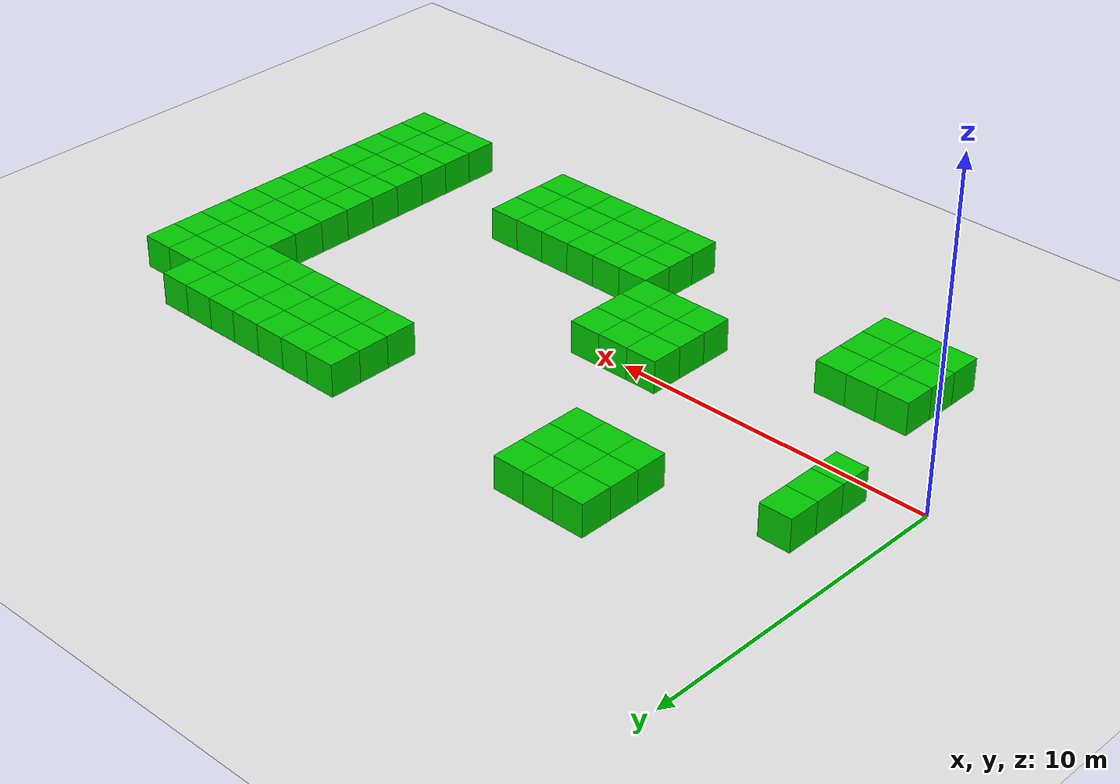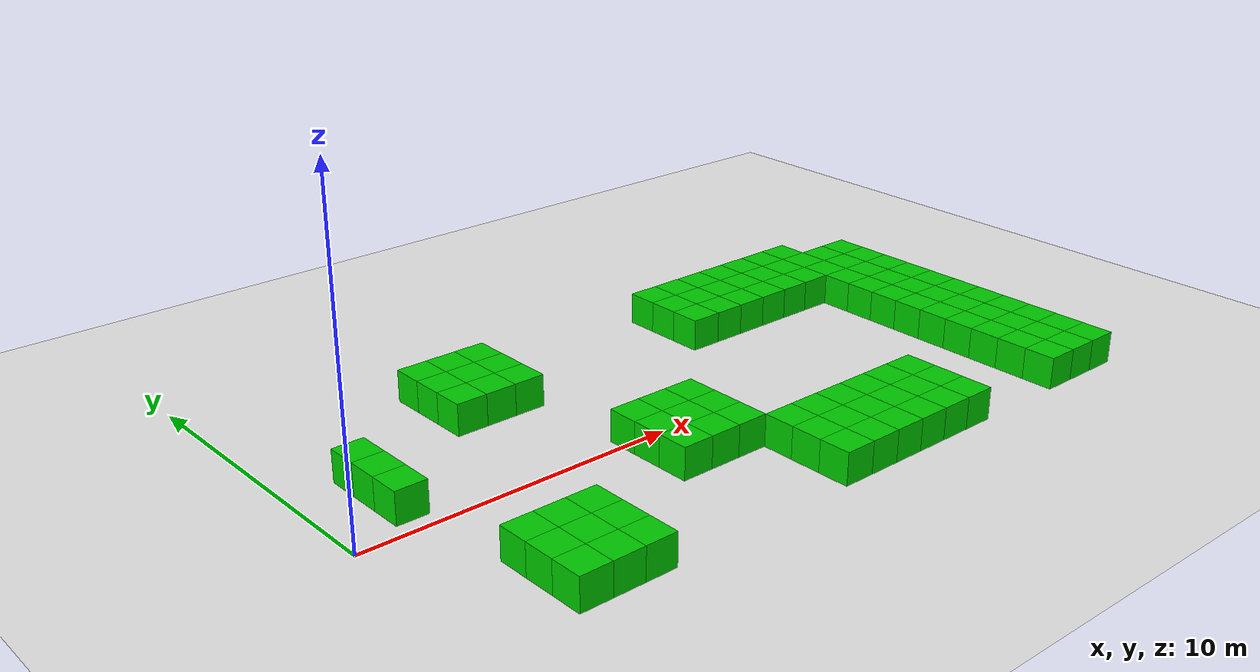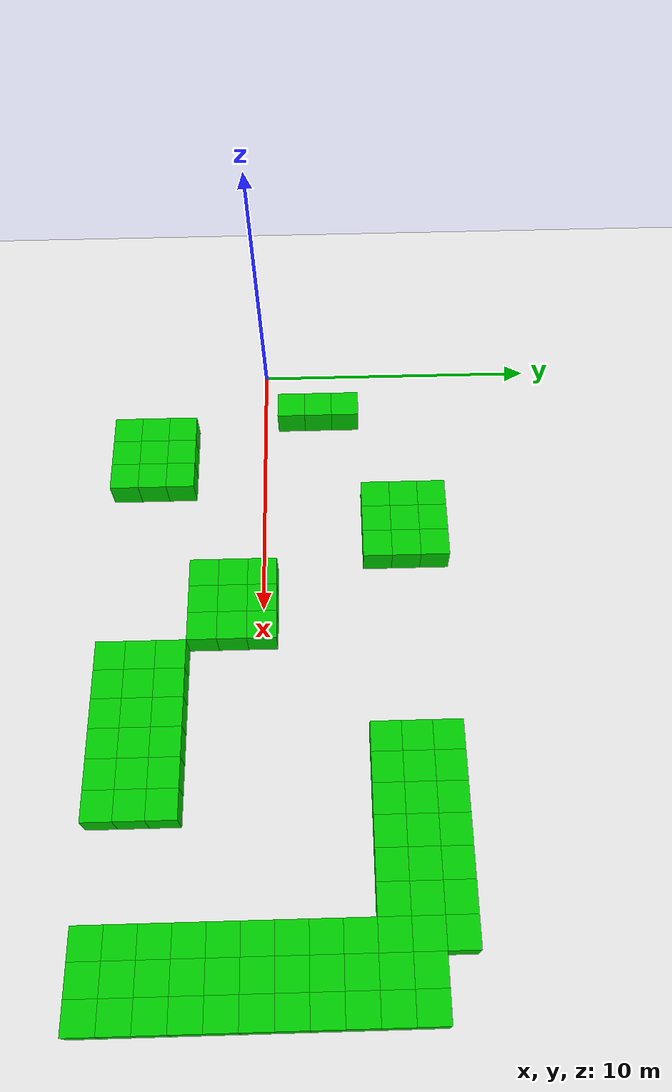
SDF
<sdf version="1.6">
 <world name="generated_maze">
  <model name="ground_plane">
   <static>true</static>
   <link name="link">
    <collision name="collision">
     <geometry><plane><normal>0 0 1</normal><size>100 100</size></plane></geometry>
    </collision>
    <visual name="visual">
     <geometry><plane><normal>0 0 1</normal><size>100 100</size></plane></geometry>
     <material>
      <ambient>0.9 0.9 0.9 1</ambient>
      <diffuse>0.9 0.9 0.9 1</diffuse>
      <specular>0.3 0.3 0.3 1</specular>
     </material>
    </visual>
   </link>
  </model>
  <model name="wall_18_30">
   <static>true</static>
   <pose>6 6 0.5 0 0 0</pose>
   <link name="link">
    <collision name="collision"><geometry><box><size>1 1 1</size></box></geometry></collision>
    <visual name="visual">
     <geometry><box><size>1 1 1</size></box></geometry>
     <material>
      <ambient>0.0 0.8 0.0 1</ambient>
      <diffuse>0.0 0.8 0.0 1</diffuse>
      <specular>0.1 0.1 0.1 1</specular>
     </material>
    </visual>
   </link>
  </model>
  <model name="wall_18_31">
   <static>true</static>
   <pose>7 6 0.5 0 0 0</pose>
   <link name="link">
    <collision name="collision"><geometry><box><size>1 1 1</size></box></geometry></collision>
    <visual name="visual">
     <geometry><box><size>1 1 1</size></box></geometry>
     <material>
      <ambient>0.0 0.8 0.0 1</ambient>
      <diffuse>0.0 0.8 0.0 1</diffuse>
      <specular>0.1 0.1 0.1 1</specular>
     </material>
    </visual>
   </link>
  </model>
  <model name="wall_18_32">
   <static>true</static>
   <pose>8 6 0.5 0 0 0</pose>
   <link name="link">
    <collision name="collision"><geometry><box><size>1 1 1</size></box></geometry></collision>
    <visual name="visual">
     <geometry><box><size>1 1 1</size></box></geometry>
     <material>
      <ambient>0.0 0.8 0.0 1</ambient>
      <diffuse>0.0 0.8 0.0 1</diffuse>
      <specular>0.1 0.1 0.1 1</specular>
     </material>
    </visual>
   </link>
  </model>
  <model name="wall_18_39">
   <static>true</static>
   <pose>15 6 0.5 0 0 0</pose>
   <link name="link">
    <collision name="collision"><geometry><box><size>1 1 1</size></box></geometry></collision>
    <visual name="visual">
     <geometry><box><size>1 1 1</size></box></geometry>
     <material>
      <ambient>0.0 0.8 0.0 1</ambient>
      <diffuse>0.0 0.8 0.0 1</diffuse>
      <specular>0.1 0.1 0.1 1</specular>
     </material>
    </visual>
   </link>
  </model>
  <model name="wall_18_40">
   <static>true</static>
   <pose>16 6 0.5 0 0 0</pose>
   <link name="link">
    <collision name="collision"><geometry><box><size>1 1 1</size></box></geometry></collision>
    <visual name="visual">
     <geometry><box><size>1 1 1</size></box></geometry>
     <material>
      <ambient>0.0 0.8 0.0 1</ambient>
      <diffuse>0.0 0.8 0.0 1</diffuse>
      <specular>0.1 0.1 0.1 1</specular>
     </material>
    </visual>
   </link>
  </model>
  <model name="wall_18_41">
   <static>true</static>
   <pose>17 6 0.5 0 0 0</pose>
   <link name="link">
    <collision name="collision"><geometry><box><size>1 1 1</size></box></geometry></collision>
    <visual name="visual">
     <geometry><box><size>1 1 1</size></box></geometry>
     <material>
      <ambient>0.0 0.8 0.0 1</ambient>
      <diffuse>0.0 0.8 0.0 1</diffuse>
      <specular>0.1 0.1 0.1 1</specular>
     </material>
    </visual>
   </link>
  </model>
  <model name="wall_18_42">
   <static>true</static>
   <pose>18 6 0.5 0 0 0</pose>
   <link name="link">
    <collision name="collision"><geometry><box><size>1 1 1</size></box></geometry></collision>
    <visual name="visual">
     <geometry><box><size>1 1 1</size></box></geometry>
     <material>
      <ambient>0.0 0.8 0.0 1</ambient>
      <diffuse>0.0 0.8 0.0 1</diffuse>
      <specular>0.1 0.1 0.1 1</specular>
     </material>
    </visual>
   </link>
  </model>
  <model name="wall_18_43">
   <static>true</static>
   <pose>19 6 0.5 0 0 0</pose>
   <link name="link">
    <collision name="collision"><geometry><box><size>1 1 1</size></box></geometry></collision>
    <visual name="visual">
     <geometry><box><size>1 1 1</size></box></geometry>
     <material>
      <ambient>0.0 0.8 0.0 1</ambient>
      <diffuse>0.0 0.8 0.0 1</diffuse>
      <specular>0.1 0.1 0.1 1</specular>
     </material>
    </visual>
   </link>
  </model>
  <model name="wall_18_44">
   <static>true</static>
   <pose>20 6 0.5 0 0 0</pose>
   <link name="link">
    <collision name="collision"><geometry><box><size>1 1 1</size></box></geometry></collision>
    <visual name="visual">
     <geometry><box><size>1 1 1</size></box></geometry>
     <material>
      <ambient>0.0 0.8 0.0 1</ambient>
      <diffuse>0.0 0.8 0.0 1</diffuse>
      <specular>0.1 0.1 0.1 1</specular>
     </material>
    </visual>
   </link>
  </model>
  <model name="wall_18_45">
   <static>true</static>
   <pose>21 6 0.5 0 0 0</pose>
   <link name="link">
    <collision name="collision"><geometry><box><size>1 1 1</size></box></geometry></collision>
    <visual name="visual">
     <geometry><box><size>1 1 1</size></box></geometry>
     <material>
      <ambient>0.0 0.8 0.0 1</ambient>
      <diffuse>0.0 0.8 0.0 1</diffuse>
      <specular>0.1 0.1 0.1 1</specular>
     </material>
    </visual>
   </link>
  </model>
  <model name="wall_19_30">
   <static>true</static>
   <pose>6 5 0.5 0 0 0</pose>
   <link name="link">
    <collision name="collision"><geometry><box><size>1 1 1</size></box></geometry></collision>
    <visual name="visual">
     <geometry><box><size>1 1 1</size></box></geometry>
     <material>
      <ambient>0.0 0.8 0.0 1</ambient>
      <diffuse>0.0 0.8 0.0 1</diffuse>
      <specular>0.1 0.1 0.1 1</specular>
     </material>
    </visual>
   </link>
  </model>
  <model name="wall_19_31">
   <static>true</static>
   <pose>7 5 0.5 0 0 0</pose>
   <link name="link">
    <collision name="collision"><geometry><box><size>1 1 1</size></box></geometry></collision>
    <visual name="visual">
     <geometry><box><size>1 1 1</size></box></geometry>
     <material>
      <ambient>0.0 0.8 0.0 1</ambient>
      <diffuse>0.0 0.8 0.0 1</diffuse>
      <specular>0.1 0.1 0.1 1</specular>
     </material>
    </visual>
   </link>
  </model>
  <model name="wall_19_32">
   <static>true</static>
   <pose>8 5 0.5 0 0 0</pose>
   <link name="link">
    <collision name="collision"><geometry><box><size>1 1 1</size></box></geometry></collision>
    <visual name="visual">
     <geometry><box><size>1 1 1</size></box></geometry>
     <material>
      <ambient>0.0 0.8 0.0 1</ambient>
      <diffuse>0.0 0.8 0.0 1</diffuse>
      <specular>0.1 0.1 0.1 1</specular>
     </material>
    </visual>
   </link>
  </model>
  <model name="wall_19_39">
   <static>true</static>
   <pose>15 5 0.5 0 0 0</pose>
   <link name="link">
    <collision name="collision"><geometry><box><size>1 1 1</size></box></geometry></collision>
    <visual name="visual">
     <geometry><box><size>1 1 1</size></box></geometry>
     <material>
      <ambient>0.0 0.8 0.0 1</ambient>
      <diffuse>0.0 0.8 0.0 1</diffuse>
      <specular>0.1 0.1 0.1 1</specular>
     </material>
    </visual>
   </link>
  </model>
  <model name="wall_19_40">
   <static>true</static>
   <pose>16 5 0.5 0 0 0</pose>
   <link name="link">
    <collision name="collision"><geometry><box><size>1 1 1</size></box></geometry></collision>
    <visual name="visual">
     <geometry><box><size>1 1 1</size></box></geometry>
     <material>
      <ambient>0.0 0.8 0.0 1</ambient>
      <diffuse>0.0 0.8 0.0 1</diffuse>
      <specular>0.1 0.1 0.1 1</specular>
     </material>
    </visual>
   </link>
  </model>
  <model name="wall_19_41">
   <static>true</static>
   <pose>17 5 0.5 0 0 0</pose>
   <link name="link">
    <collision name="collision"><geometry><box><size>1 1 1</size></box></geometry></collision>
    <visual name="visual">
     <geometry><box><size>1 1 1</size></box></geometry>
     <material>
      <ambient>0.0 0.8 0.0 1</ambient>
      <diffuse>0.0 0.8 0.0 1</diffuse>
      <specular>0.1 0.1 0.1 1</specular>
     </material>
    </visual>
   </link>
  </model>
  <model name="wall_19_42">
   <static>true</static>
   <pose>18 5 0.5 0 0 0</pose>
   <link name="link">
    <collision name="collision"><geometry><box><size>1 1 1</size></box></geometry></collision>
    <visual name="visual">
     <geometry><box><size>1 1 1</size></box></geometry>
     <material>
      <ambient>0.0 0.8 0.0 1</ambient>
      <diffuse>0.0 0.8 0.0 1</diffuse>
      <specular>0.1 0.1 0.1 1</specular>
     </material>
    </visual>
   </link>
  </model>
  <model name="wall_19_43">
   <static>true</static>
   <pose>19 5 0.5 0 0 0</pose>
   <link name="link">
    <collision name="collision"><geometry><box><size>1 1 1</size></box></geometry></collision>
    <visual name="visual">
     <geometry><box><size>1 1 1</size></box></geometry>
     <material>
      <ambient>0.0 0.8 0.0 1</ambient>
      <diffuse>0.0 0.8 0.0 1</diffuse>
      <specular>0.1 0.1 0.1 1</specular>
     </material>
    </visual>
   </link>
  </model>
  <model name="wall_19_44">
   <static>true</static>
   <pose>20 5 0.5 0 0 0</pose>
   <link name="link">
    <collision name="collision"><geometry><box><size>1 1 1</size></box></geometry></collision>
    <visual name="visual">
     <geometry><box><size>1 1 1</size></box></geometry>
     <material>
      <ambient>0.0 0.8 0.0 1</ambient>
      <diffuse>0.0 0.8 0.0 1</diffuse>
      <specular>0.1 0.1 0.1 1</specular>
     </material>
    </visual>
   </link>
  </model>
  <model name="wall_19_45">
   <static>true</static>
   <pose>21 5 0.5 0 0 0</pose>
   <link name="link">
    <collision name="collision"><geometry><box><size>1 1 1</size></box></geometry></collision>
    <visual name="visual">
     <geometry><box><size>1 1 1</size></box></geometry>
     <material>
      <ambient>0.0 0.8 0.0 1</ambient>
      <diffuse>0.0 0.8 0.0 1</diffuse>
      <specular>0.1 0.1 0.1 1</specular>
     </material>
    </visual>
   </link>
  </model>
  <model name="wall_19_46">
   <static>true</static>
   <pose>22 5 0.5 0 0 0</pose>
   <link name="link">
    <collision name="collision"><geometry><box><size>1 1 1</size></box></geometry></collision>
    <visual name="visual">
     <geometry><box><size>1 1 1</size></box></geometry>
     <material>
      <ambient>0.0 0.8 0.0 1</ambient>
      <diffuse>0.0 0.8 0.0 1</diffuse>
      <specular>0.1 0.1 0.1 1</specular>
     </material>
    </visual>
   </link>
  </model>
  <model name="wall_19_47">
   <static>true</static>
   <pose>23 5 0.5 0 0 0</pose>
   <link name="link">
    <collision name="collision"><geometry><box><size>1 1 1</size></box></geometry></collision>
    <visual name="visual">
     <geometry><box><size>1 1 1</size></box></geometry>
     <material>
      <ambient>0.0 0.8 0.0 1</ambient>
      <diffuse>0.0 0.8 0.0 1</diffuse>
      <specular>0.1 0.1 0.1 1</specular>
     </material>
    </visual>
   </link>
  </model>
  <model name="wall_20_30">
   <static>true</static>
   <pose>6 4 0.5 0 0 0</pose>
   <link name="link">
    <collision name="collision"><geometry><box><size>1 1 1</size></box></geometry></collision>
    <visual name="visual">
     <geometry><box><size>1 1 1</size></box></geometry>
     <material>
      <ambient>0.0 0.8 0.0 1</ambient>
      <diffuse>0.0 0.8 0.0 1</diffuse>
      <specular>0.1 0.1 0.1 1</specular>
     </material>
    </visual>
   </link>
  </model>
  <model name="wall_20_31">
   <static>true</static>
   <pose>7 4 0.5 0 0 0</pose>
   <link name="link">
    <collision name="collision"><geometry><box><size>1 1 1</size></box></geometry></collision>
    <visual name="visual">
     <geometry><box><size>1 1 1</size></box></geometry>
     <material>
      <ambient>0.0 0.8 0.0 1</ambient>
      <diffuse>0.0 0.8 0.0 1</diffuse>
      <specular>0.1 0.1 0.1 1</specular>
     </material>
    </visual>
   </link>
  </model>
  <model name="wall_20_32">
   <static>true</static>
   <pose>8 4 0.5 0 0 0</pose>
   <link name="link">
    <collision name="collision"><geometry><box><size>1 1 1</size></box></geometry></collision>
    <visual name="visual">
     <geometry><box><size>1 1 1</size></box></geometry>
     <material>
      <ambient>0.0 0.8 0.0 1</ambient>
      <diffuse>0.0 0.8 0.0 1</diffuse>
      <specular>0.1 0.1 0.1 1</specular>
     </material>
    </visual>
   </link>
  </model>
  <model name="wall_20_39">
   <static>true</static>
   <pose>15 4 0.5 0 0 0</pose>
   <link name="link">
    <collision name="collision"><geometry><box><size>1 1 1</size></box></geometry></collision>
    <visual name="visual">
     <geometry><box><size>1 1 1</size></box></geometry>
     <material>
      <ambient>0.0 0.8 0.0 1</ambient>
      <diffuse>0.0 0.8 0.0 1</diffuse>
      <specular>0.1 0.1 0.1 1</specular>
     </material>
    </visual>
   </link>
  </model>
  <model name="wall_20_40">
   <static>true</static>
   <pose>16 4 0.5 0 0 0</pose>
   <link name="link">
    <collision name="collision"><geometry><box><size>1 1 1</size></box></geometry></collision>
    <visual name="visual">
     <geometry><box><size>1 1 1</size></box></geometry>
     <material>
      <ambient>0.0 0.8 0.0 1</ambient>
      <diffuse>0.0 0.8 0.0 1</diffuse>
      <specular>0.1 0.1 0.1 1</specular>
     </material>
    </visual>
   </link>
  </model>
  <model name="wall_20_41">
   <static>true</static>
   <pose>17 4 0.5 0 0 0</pose>
   <link name="link">
    <collision name="collision"><geometry><box><size>1 1 1</size></box></geometry></collision>
    <visual name="visual">
     <geometry><box><size>1 1 1</size></box></geometry>
     <material>
      <ambient>0.0 0.8 0.0 1</ambient>
      <diffuse>0.0 0.8 0.0 1</diffuse>
      <specular>0.1 0.1 0.1 1</specular>
     </material>
    </visual>
   </link>
  </model>
  <model name="wall_20_42">
   <static>true</static>
   <pose>18 4 0.5 0 0 0</pose>
   <link name="link">
    <collision name="collision"><geometry><box><size>1 1 1</size></box></geometry></collision>
    <visual name="visual">
     <geometry><box><size>1 1 1</size></box></geometry>
     <material>
      <ambient>0.0 0.8 0.0 1</ambient>
      <diffuse>0.0 0.8 0.0 1</diffuse>
      <specular>0.1 0.1 0.1 1</specular>
     </material>
    </visual>
   </link>
  </model>
  <model name="wall_20_43">
   <static>true</static>
   <pose>19 4 0.5 0 0 0</pose>
   <link name="link">
    <collision name="collision"><geometry><box><size>1 1 1</size></box></geometry></collision>
    <visual name="visual">
     <geometry><box><size>1 1 1</size></box></geometry>
     <material>
      <ambient>0.0 0.8 0.0 1</ambient>
      <diffuse>0.0 0.8 0.0 1</diffuse>
      <specular>0.1 0.1 0.1 1</specular>
     </material>
    </visual>
   </link>
  </model>
  <model name="wall_20_44">
   <static>true</static>
   <pose>20 4 0.5 0 0 0</pose>
   <link name="link">
    <collision name="collision"><geometry><box><size>1 1 1</size></box></geometry></collision>
    <visual name="visual">
     <geometry><box><size>1 1 1</size></box></geometry>
     <material>
      <ambient>0.0 0.8 0.0 1</ambient>
      <diffuse>0.0 0.8 0.0 1</diffuse>
      <specular>0.1 0.1 0.1 1</specular>
     </material>
    </visual>
   </link>
  </model>
  <model name="wall_20_45">
   <static>true</static>
   <pose>21 4 0.5 0 0 0</pose>
   <link name="link">
    <collision name="collision"><geometry><box><size>1 1 1</size></box></geometry></collision>
    <visual name="visual">
     <geometry><box><size>1 1 1</size></box></geometry>
     <material>
      <ambient>0.0 0.8 0.0 1</ambient>
      <diffuse>0.0 0.8 0.0 1</diffuse>
      <specular>0.1 0.1 0.1 1</specular>
     </material>
    </visual>
   </link>
  </model>
  <model name="wall_20_46">
   <static>true</static>
   <pose>22 4 0.5 0 0 0</pose>
   <link name="link">
    <collision name="collision"><geometry><box><size>1 1 1</size></box></geometry></collision>
    <visual name="visual">
     <geometry><box><size>1 1 1</size></box></geometry>
     <material>
      <ambient>0.0 0.8 0.0 1</ambient>
      <diffuse>0.0 0.8 0.0 1</diffuse>
      <specular>0.1 0.1 0.1 1</specular>
     </material>
    </visual>
   </link>
  </model>
  <model name="wall_20_47">
   <static>true</static>
   <pose>23 4 0.5 0 0 0</pose>
   <link name="link">
    <collision name="collision"><geometry><box><size>1 1 1</size></box></geometry></collision>
    <visual name="visual">
     <geometry><box><size>1 1 1</size></box></geometry>
     <material>
      <ambient>0.0 0.8 0.0 1</ambient>
      <diffuse>0.0 0.8 0.0 1</diffuse>
      <specular>0.1 0.1 0.1 1</specular>
     </material>
    </visual>
   </link>
  </model>
  <model name="wall_21_26">
   <static>true</static>
   <pose>2 3 0.5 0 0 0</pose>
   <link name="link">
    <collision name="collision"><geometry><box><size>1 1 1</size></box></geometry></collision>
    <visual name="visual">
     <geometry><box><size>1 1 1</size></box></geometry>
     <material>
      <ambient>0.0 0.8 0.0 1</ambient>
      <diffuse>0.0 0.8 0.0 1</diffuse>
      <specular>0.1 0.1 0.1 1</specular>
     </material>
    </visual>
   </link>
  </model>
  <model name="wall_21_45">
   <static>true</static>
   <pose>21 3 0.5 0 0 0</pose>
   <link name="link">
    <collision name="collision"><geometry><box><size>1 1 1</size></box></geometry></collision>
    <visual name="visual">
     <geometry><box><size>1 1 1</size></box></geometry>
     <material>
      <ambient>0.0 0.8 0.0 1</ambient>
      <diffuse>0.0 0.8 0.0 1</diffuse>
      <specular>0.1 0.1 0.1 1</specular>
     </material>
    </visual>
   </link>
  </model>
  <model name="wall_21_46">
   <static>true</static>
   <pose>22 3 0.5 0 0 0</pose>
   <link name="link">
    <collision name="collision"><geometry><box><size>1 1 1</size></box></geometry></collision>
    <visual name="visual">
     <geometry><box><size>1 1 1</size></box></geometry>
     <material>
      <ambient>0.0 0.8 0.0 1</ambient>
      <diffuse>0.0 0.8 0.0 1</diffuse>
      <specular>0.1 0.1 0.1 1</specular>
     </material>
    </visual>
   </link>
  </model>
  <model name="wall_21_47">
   <static>true</static>
   <pose>23 3 0.5 0 0 0</pose>
   <link name="link">
    <collision name="collision"><geometry><box><size>1 1 1</size></box></geometry></collision>
    <visual name="visual">
     <geometry><box><size>1 1 1</size></box></geometry>
     <material>
      <ambient>0.0 0.8 0.0 1</ambient>
      <diffuse>0.0 0.8 0.0 1</diffuse>
      <specular>0.1 0.1 0.1 1</specular>
     </material>
    </visual>
   </link>
  </model>
  <model name="wall_22_26">
   <static>true</static>
   <pose>2 2 0.5 0 0 0</pose>
   <link name="link">
    <collision name="collision"><geometry><box><size>1 1 1</size></box></geometry></collision>
    <visual name="visual">
     <geometry><box><size>1 1 1</size></box></geometry>
     <material>
      <ambient>0.0 0.8 0.0 1</ambient>
      <diffuse>0.0 0.8 0.0 1</diffuse>
      <specular>0.1 0.1 0.1 1</specular>
     </material>
    </visual>
   </link>
  </model>
  <model name="wall_22_45">
   <static>true</static>
   <pose>21 2 0.5 0 0 0</pose>
   <link name="link">
    <collision name="collision"><geometry><box><size>1 1 1</size></box></geometry></collision>
    <visual name="visual">
     <geometry><box><size>1 1 1</size></box></geometry>
     <material>
      <ambient>0.0 0.8 0.0 1</ambient>
      <diffuse>0.0 0.8 0.0 1</diffuse>
      <specular>0.1 0.1 0.1 1</specular>
     </material>
    </visual>
   </link>
  </model>
  <model name="wall_22_46">
   <static>true</static>
   <pose>22 2 0.5 0 0 0</pose>
   <link name="link">
    <collision name="collision"><geometry><box><size>1 1 1</size></box></geometry></collision>
    <visual name="visual">
     <geometry><box><size>1 1 1</size></box></geometry>
     <material>
      <ambient>0.0 0.8 0.0 1</ambient>
      <diffuse>0.0 0.8 0.0 1</diffuse>
      <specular>0.1 0.1 0.1 1</specular>
     </material>
    </visual>
   </link>
  </model>
  <model name="wall_22_47">
   <static>true</static>
   <pose>23 2 0.5 0 0 0</pose>
   <link name="link">
    <collision name="collision"><geometry><box><size>1 1 1</size></box></geometry></collision>
    <visual name="visual">
     <geometry><box><size>1 1 1</size></box></geometry>
     <material>
      <ambient>0.0 0.8 0.0 1</ambient>
      <diffuse>0.0 0.8 0.0 1</diffuse>
      <specular>0.1 0.1 0.1 1</specular>
     </material>
    </visual>
   </link>
  </model>
  <model name="wall_23_26">
   <static>true</static>
   <pose>2 1 0.5 0 0 0</pose>
   <link name="link">
    <collision name="collision"><geometry><box><size>1 1 1</size></box></geometry></collision>
    <visual name="visual">
     <geometry><box><size>1 1 1</size></box></geometry>
     <material>
      <ambient>0.0 0.8 0.0 1</ambient>
      <diffuse>0.0 0.8 0.0 1</diffuse>
      <specular>0.1 0.1 0.1 1</specular>
     </material>
    </visual>
   </link>
  </model>
  <model name="wall_23_45">
   <static>true</static>
   <pose>21 1 0.5 0 0 0</pose>
   <link name="link">
    <collision name="collision"><geometry><box><size>1 1 1</size></box></geometry></collision>
    <visual name="visual">
     <geometry><box><size>1 1 1</size></box></geometry>
     <material>
      <ambient>0.0 0.8 0.0 1</ambient>
      <diffuse>0.0 0.8 0.0 1</diffuse>
      <specular>0.1 0.1 0.1 1</specular>
     </material>
    </visual>
   </link>
  </model>
  <model name="wall_23_46">
   <static>true</static>
   <pose>22 1 0.5 0 0 0</pose>
   <link name="link">
    <collision name="collision"><geometry><box><size>1 1 1</size></box></geometry></collision>
    <visual name="visual">
     <geometry><box><size>1 1 1</size></box></geometry>
     <material>
      <ambient>0.0 0.8 0.0 1</ambient>
      <diffuse>0.0 0.8 0.0 1</diffuse>
      <specular>0.1 0.1 0.1 1</specular>
     </material>
    </visual>
   </link>
  </model>
  <model name="wall_23_47">
   <static>true</static>
   <pose>23 1 0.5 0 0 0</pose>
   <link name="link">
    <collision name="collision"><geometry><box><size>1 1 1</size></box></geometry></collision>
    <visual name="visual">
     <geometry><box><size>1 1 1</size></box></geometry>
     <material>
      <ambient>0.0 0.8 0.0 1</ambient>
      <diffuse>0.0 0.8 0.0 1</diffuse>
      <specular>0.1 0.1 0.1 1</specular>
     </material>
    </visual>
   </link>
  </model>
  <model name="wall_24_33">
   <static>true</static>
   <pose>9 0 0.5 0 0 0</pose>
   <link name="link">
    <collision name="collision"><geometry><box><size>1 1 1</size></box></geometry></collision>
    <visual name="visual">
     <geometry><box><size>1 1 1</size></box></geometry>
     <material>
      <ambient>0.0 0.8 0.0 1</ambient>
      <diffuse>0.0 0.8 0.0 1</diffuse>
      <specular>0.1 0.1 0.1 1</specular>
     </material>
    </visual>
   </link>
  </model>
  <model name="wall_24_34">
   <static>true</static>
   <pose>10 0 0.5 0 0 0</pose>
   <link name="link">
    <collision name="collision"><geometry><box><size>1 1 1</size></box></geometry></collision>
    <visual name="visual">
     <geometry><box><size>1 1 1</size></box></geometry>
     <material>
      <ambient>0.0 0.8 0.0 1</ambient>
      <diffuse>0.0 0.8 0.0 1</diffuse>
      <specular>0.1 0.1 0.1 1</specular>
     </material>
    </visual>
   </link>
  </model>
  <model name="wall_24_35">
   <static>true</static>
   <pose>11 0 0.5 0 0 0</pose>
   <link name="link">
    <collision name="collision"><geometry><box><size>1 1 1</size></box></geometry></collision>
    <visual name="visual">
     <geometry><box><size>1 1 1</size></box></geometry>
     <material>
      <ambient>0.0 0.8 0.0 1</ambient>
      <diffuse>0.0 0.8 0.0 1</diffuse>
      <specular>0.1 0.1 0.1 1</specular>
     </material>
    </visual>
   </link>
  </model>
  <model name="wall_24_45">
   <static>true</static>
   <pose>21 0 0.5 0 0 0</pose>
   <link name="link">
    <collision name="collision"><geometry><box><size>1 1 1</size></box></geometry></collision>
    <visual name="visual">
     <geometry><box><size>1 1 1</size></box></geometry>
     <material>
      <ambient>0.0 0.8 0.0 1</ambient>
      <diffuse>0.0 0.8 0.0 1</diffuse>
      <specular>0.1 0.1 0.1 1</specular>
     </material>
    </visual>
   </link>
  </model>
  <model name="wall_24_46">
   <static>true</static>
   <pose>22 0 0.5 0 0 0</pose>
   <link name="link">
    <collision name="collision"><geometry><box><size>1 1 1</size></box></geometry></collision>
    <visual name="visual">
     <geometry><box><size>1 1 1</size></box></geometry>
     <material>
      <ambient>0.0 0.8 0.0 1</ambient>
      <diffuse>0.0 0.8 0.0 1</diffuse>
      <specular>0.1 0.1 0.1 1</specular>
     </material>
    </visual>
   </link>
  </model>
  <model name="wall_24_47">
   <static>true</static>
   <pose>23 0 0.5 0 0 0</pose>
   <link name="link">
    <collision name="collision"><geometry><box><size>1 1 1</size></box></geometry></collision>
    <visual name="visual">
     <geometry><box><size>1 1 1</size></box></geometry>
     <material>
      <ambient>0.0 0.8 0.0 1</ambient>
      <diffuse>0.0 0.8 0.0 1</diffuse>
      <specular>0.1 0.1 0.1 1</specular>
     </material>
    </visual>
   </link>
  </model>
  <model name="wall_25_33">
   <static>true</static>
   <pose>9 -1 0.5 0 0 0</pose>
   <link name="link">
    <collision name="collision"><geometry><box><size>1 1 1</size></box></geometry></collision>
    <visual name="visual">
     <geometry><box><size>1 1 1</size></box></geometry>
     <material>
      <ambient>0.0 0.8 0.0 1</ambient>
      <diffuse>0.0 0.8 0.0 1</diffuse>
      <specular>0.1 0.1 0.1 1</specular>
     </material>
    </visual>
   </link>
  </model>
  <model name="wall_25_34">
   <static>true</static>
   <pose>10 -1 0.5 0 0 0</pose>
   <link name="link">
    <collision name="collision"><geometry><box><size>1 1 1</size></box></geometry></collision>
    <visual name="visual">
     <geometry><box><size>1 1 1</size></box></geometry>
     <material>
      <ambient>0.0 0.8 0.0 1</ambient>
      <diffuse>0.0 0.8 0.0 1</diffuse>
      <specular>0.1 0.1 0.1 1</specular>
     </material>
    </visual>
   </link>
  </model>
  <model name="wall_25_35">
   <static>true</static>
   <pose>11 -1 0.5 0 0 0</pose>
   <link name="link">
    <collision name="collision"><geometry><box><size>1 1 1</size></box></geometry></collision>
    <visual name="visual">
     <geometry><box><size>1 1 1</size></box></geometry>
     <material>
      <ambient>0.0 0.8 0.0 1</ambient>
      <diffuse>0.0 0.8 0.0 1</diffuse>
      <specular>0.1 0.1 0.1 1</specular>
     </material>
    </visual>
   </link>
  </model>
  <model name="wall_25_45">
   <static>true</static>
   <pose>21 -1 0.5 0 0 0</pose>
   <link name="link">
    <collision name="collision"><geometry><box><size>1 1 1</size></box></geometry></collision>
    <visual name="visual">
     <geometry><box><size>1 1 1</size></box></geometry>
     <material>
      <ambient>0.0 0.8 0.0 1</ambient>
      <diffuse>0.0 0.8 0.0 1</diffuse>
      <specular>0.1 0.1 0.1 1</specular>
     </material>
    </visual>
   </link>
  </model>
  <model name="wall_25_46">
   <static>true</static>
   <pose>22 -1 0.5 0 0 0</pose>
   <link name="link">
    <collision name="collision"><geometry><box><size>1 1 1</size></box></geometry></collision>
    <visual name="visual">
     <geometry><box><size>1 1 1</size></box></geometry>
     <material>
      <ambient>0.0 0.8 0.0 1</ambient>
      <diffuse>0.0 0.8 0.0 1</diffuse>
      <specular>0.1 0.1 0.1 1</specular>
     </material>
    </visual>
   </link>
  </model>
  <model name="wall_25_47">
   <static>true</static>
   <pose>23 -1 0.5 0 0 0</pose>
   <link name="link">
    <collision name="collision"><geometry><box><size>1 1 1</size></box></geometry></collision>
    <visual name="visual">
     <geometry><box><size>1 1 1</size></box></geometry>
     <material>
      <ambient>0.0 0.8 0.0 1</ambient>
      <diffuse>0.0 0.8 0.0 1</diffuse>
      <specular>0.1 0.1 0.1 1</specular>
     </material>
    </visual>
   </link>
  </model>
  <model name="wall_26_33">
   <static>true</static>
   <pose>9 -2 0.5 0 0 0</pose>
   <link name="link">
    <collision name="collision"><geometry><box><size>1 1 1</size></box></geometry></collision>
    <visual name="visual">
     <geometry><box><size>1 1 1</size></box></geometry>
     <material>
      <ambient>0.0 0.8 0.0 1</ambient>
      <diffuse>0.0 0.8 0.0 1</diffuse>
      <specular>0.1 0.1 0.1 1</specular>
     </material>
    </visual>
   </link>
  </model>
  <model name="wall_26_34">
   <static>true</static>
   <pose>10 -2 0.5 0 0 0</pose>
   <link name="link">
    <collision name="collision"><geometry><box><size>1 1 1</size></box></geometry></collision>
    <visual name="visual">
     <geometry><box><size>1 1 1</size></box></geometry>
     <material>
      <ambient>0.0 0.8 0.0 1</ambient>
      <diffuse>0.0 0.8 0.0 1</diffuse>
      <specular>0.1 0.1 0.1 1</specular>
     </material>
    </visual>
   </link>
  </model>
  <model name="wall_26_35">
   <static>true</static>
   <pose>11 -2 0.5 0 0 0</pose>
   <link name="link">
    <collision name="collision"><geometry><box><size>1 1 1</size></box></geometry></collision>
    <visual name="visual">
     <geometry><box><size>1 1 1</size></box></geometry>
     <material>
      <ambient>0.0 0.8 0.0 1</ambient>
      <diffuse>0.0 0.8 0.0 1</diffuse>
      <specular>0.1 0.1 0.1 1</specular>
     </material>
    </visual>
   </link>
  </model>
  <model name="wall_26_45">
   <static>true</static>
   <pose>21 -2 0.5 0 0 0</pose>
   <link name="link">
    <collision name="collision"><geometry><box><size>1 1 1</size></box></geometry></collision>
    <visual name="visual">
     <geometry><box><size>1 1 1</size></box></geometry>
     <material>
      <ambient>0.0 0.8 0.0 1</ambient>
      <diffuse>0.0 0.8 0.0 1</diffuse>
      <specular>0.1 0.1 0.1 1</specular>
     </material>
    </visual>
   </link>
  </model>
  <model name="wall_26_46">
   <static>true</static>
   <pose>22 -2 0.5 0 0 0</pose>
   <link name="link">
    <collision name="collision"><geometry><box><size>1 1 1</size></box></geometry></collision>
    <visual name="visual">
     <geometry><box><size>1 1 1</size></box></geometry>
     <material>
      <ambient>0.0 0.8 0.0 1</ambient>
      <diffuse>0.0 0.8 0.0 1</diffuse>
      <specular>0.1 0.1 0.1 1</specular>
     </material>
    </visual>
   </link>
  </model>
  <model name="wall_26_47">
   <static>true</static>
   <pose>23 -2 0.5 0 0 0</pose>
   <link name="link">
    <collision name="collision"><geometry><box><size>1 1 1</size></box></geometry></collision>
    <visual name="visual">
     <geometry><box><size>1 1 1</size></box></geometry>
     <material>
      <ambient>0.0 0.8 0.0 1</ambient>
      <diffuse>0.0 0.8 0.0 1</diffuse>
      <specular>0.1 0.1 0.1 1</specular>
     </material>
    </visual>
   </link>
  </model>
  <model name="wall_27_27">
   <static>true</static>
   <pose>3 -3 0.5 0 0 0</pose>
   <link name="link">
    <collision name="collision"><geometry><box><size>1 1 1</size></box></geometry></collision>
    <visual name="visual">
     <geometry><box><size>1 1 1</size></box></geometry>
     <material>
      <ambient>0.0 0.8 0.0 1</ambient>
      <diffuse>0.0 0.8 0.0 1</diffuse>
      <specular>0.1 0.1 0.1 1</specular>
     </material>
    </visual>
   </link>
  </model>
  <model name="wall_27_28">
   <static>true</static>
   <pose>4 -3 0.5 0 0 0</pose>
   <link name="link">
    <collision name="collision"><geometry><box><size>1 1 1</size></box></geometry></collision>
    <visual name="visual">
     <geometry><box><size>1 1 1</size></box></geometry>
     <material>
      <ambient>0.0 0.8 0.0 1</ambient>
      <diffuse>0.0 0.8 0.0 1</diffuse>
      <specular>0.1 0.1 0.1 1</specular>
     </material>
    </visual>
   </link>
  </model>
  <model name="wall_27_29">
   <static>true</static>
   <pose>5 -3 0.5 0 0 0</pose>
   <link name="link">
    <collision name="collision"><geometry><box><size>1 1 1</size></box></geometry></collision>
    <visual name="visual">
     <geometry><box><size>1 1 1</size></box></geometry>
     <material>
      <ambient>0.0 0.8 0.0 1</ambient>
      <diffuse>0.0 0.8 0.0 1</diffuse>
      <specular>0.1 0.1 0.1 1</specular>
     </material>
    </visual>
   </link>
  </model>
  <model name="wall_27_36">
   <static>true</static>
   <pose>12 -3 0.5 0 0 0</pose>
   <link name="link">
    <collision name="collision"><geometry><box><size>1 1 1</size></box></geometry></collision>
    <visual name="visual">
     <geometry><box><size>1 1 1</size></box></geometry>
     <material>
      <ambient>0.0 0.8 0.0 1</ambient>
      <diffuse>0.0 0.8 0.0 1</diffuse>
      <specular>0.1 0.1 0.1 1</specular>
     </material>
    </visual>
   </link>
  </model>
  <model name="wall_27_37">
   <static>true</static>
   <pose>13 -3 0.5 0 0 0</pose>
   <link name="link">
    <collision name="collision"><geometry><box><size>1 1 1</size></box></geometry></collision>
    <visual name="visual">
     <geometry><box><size>1 1 1</size></box></geometry>
     <material>
      <ambient>0.0 0.8 0.0 1</ambient>
      <diffuse>0.0 0.8 0.0 1</diffuse>
      <specular>0.1 0.1 0.1 1</specular>
     </material>
    </visual>
   </link>
  </model>
  <model name="wall_27_38">
   <static>true</static>
   <pose>14 -3 0.5 0 0 0</pose>
   <link name="link">
    <collision name="collision"><geometry><box><size>1 1 1</size></box></geometry></collision>
    <visual name="visual">
     <geometry><box><size>1 1 1</size></box></geometry>
     <material>
      <ambient>0.0 0.8 0.0 1</ambient>
      <diffuse>0.0 0.8 0.0 1</diffuse>
      <specular>0.1 0.1 0.1 1</specular>
     </material>
    </visual>
   </link>
  </model>
  <model name="wall_27_39">
   <static>true</static>
   <pose>15 -3 0.5 0 0 0</pose>
   <link name="link">
    <collision name="collision"><geometry><box><size>1 1 1</size></box></geometry></collision>
    <visual name="visual">
     <geometry><box><size>1 1 1</size></box></geometry>
     <material>
      <ambient>0.0 0.8 0.0 1</ambient>
      <diffuse>0.0 0.8 0.0 1</diffuse>
      <specular>0.1 0.1 0.1 1</specular>
     </material>
    </visual>
   </link>
  </model>
  <model name="wall_27_40">
   <static>true</static>
   <pose>16 -3 0.5 0 0 0</pose>
   <link name="link">
    <collision name="collision"><geometry><box><size>1 1 1</size></box></geometry></collision>
    <visual name="visual">
     <geometry><box><size>1 1 1</size></box></geometry>
     <material>
      <ambient>0.0 0.8 0.0 1</ambient>
      <diffuse>0.0 0.8 0.0 1</diffuse>
      <specular>0.1 0.1 0.1 1</specular>
     </material>
    </visual>
   </link>
  </model>
  <model name="wall_27_41">
   <static>true</static>
   <pose>17 -3 0.5 0 0 0</pose>
   <link name="link">
    <collision name="collision"><geometry><box><size>1 1 1</size></box></geometry></collision>
    <visual name="visual">
     <geometry><box><size>1 1 1</size></box></geometry>
     <material>
      <ambient>0.0 0.8 0.0 1</ambient>
      <diffuse>0.0 0.8 0.0 1</diffuse>
      <specular>0.1 0.1 0.1 1</specular>
     </material>
    </visual>
   </link>
  </model>
  <model name="wall_27_45">
   <static>true</static>
   <pose>21 -3 0.5 0 0 0</pose>
   <link name="link">
    <collision name="collision"><geometry><box><size>1 1 1</size></box></geometry></collision>
    <visual name="visual">
     <geometry><box><size>1 1 1</size></box></geometry>
     <material>
      <ambient>0.0 0.8 0.0 1</ambient>
      <diffuse>0.0 0.8 0.0 1</diffuse>
      <specular>0.1 0.1 0.1 1</specular>
     </material>
    </visual>
   </link>
  </model>
  <model name="wall_27_46">
   <static>true</static>
   <pose>22 -3 0.5 0 0 0</pose>
   <link name="link">
    <collision name="collision"><geometry><box><size>1 1 1</size></box></geometry></collision>
    <visual name="visual">
     <geometry><box><size>1 1 1</size></box></geometry>
     <material>
      <ambient>0.0 0.8 0.0 1</ambient>
      <diffuse>0.0 0.8 0.0 1</diffuse>
      <specular>0.1 0.1 0.1 1</specular>
     </material>
    </visual>
   </link>
  </model>
  <model name="wall_27_47">
   <static>true</static>
   <pose>23 -3 0.5 0 0 0</pose>
   <link name="link">
    <collision name="collision"><geometry><box><size>1 1 1</size></box></geometry></collision>
    <visual name="visual">
     <geometry><box><size>1 1 1</size></box></geometry>
     <material>
      <ambient>0.0 0.8 0.0 1</ambient>
      <diffuse>0.0 0.8 0.0 1</diffuse>
      <specular>0.1 0.1 0.1 1</specular>
     </material>
    </visual>
   </link>
  </model>
  <model name="wall_28_27">
   <static>true</static>
   <pose>3 -4 0.5 0 0 0</pose>
   <link name="link">
    <collision name="collision"><geometry><box><size>1 1 1</size></box></geometry></collision>
    <visual name="visual">
     <geometry><box><size>1 1 1</size></box></geometry>
     <material>
      <ambient>0.0 0.8 0.0 1</ambient>
      <diffuse>0.0 0.8 0.0 1</diffuse>
      <specular>0.1 0.1 0.1 1</specular>
     </material>
    </visual>
   </link>
  </model>
  <model name="wall_28_28">
   <static>true</static>
   <pose>4 -4 0.5 0 0 0</pose>
   <link name="link">
    <collision name="collision"><geometry><box><size>1 1 1</size></box></geometry></collision>
    <visual name="visual">
     <geometry><box><size>1 1 1</size></box></geometry>
     <material>
      <ambient>0.0 0.8 0.0 1</ambient>
      <diffuse>0.0 0.8 0.0 1</diffuse>
      <specular>0.1 0.1 0.1 1</specular>
     </material>
    </visual>
   </link>
  </model>
  <model name="wall_28_29">
   <static>true</static>
   <pose>5 -4 0.5 0 0 0</pose>
   <link name="link">
    <collision name="collision"><geometry><box><size>1 1 1</size></box></geometry></collision>
    <visual name="visual">
     <geometry><box><size>1 1 1</size></box></geometry>
     <material>
      <ambient>0.0 0.8 0.0 1</ambient>
      <diffuse>0.0 0.8 0.0 1</diffuse>
      <specular>0.1 0.1 0.1 1</specular>
     </material>
    </visual>
   </link>
  </model>
  <model name="wall_28_36">
   <static>true</static>
   <pose>12 -4 0.5 0 0 0</pose>
   <link name="link">
    <collision name="collision"><geometry><box><size>1 1 1</size></box></geometry></collision>
    <visual name="visual">
     <geometry><box><size>1 1 1</size></box></geometry>
     <material>
      <ambient>0.0 0.8 0.0 1</ambient>
      <diffuse>0.0 0.8 0.0 1</diffuse>
      <specular>0.1 0.1 0.1 1</specular>
     </material>
    </visual>
   </link>
  </model>
  <model name="wall_28_37">
   <static>true</static>
   <pose>13 -4 0.5 0 0 0</pose>
   <link name="link">
    <collision name="collision"><geometry><box><size>1 1 1</size></box></geometry></collision>
    <visual name="visual">
     <geometry><box><size>1 1 1</size></box></geometry>
     <material>
      <ambient>0.0 0.8 0.0 1</ambient>
      <diffuse>0.0 0.8 0.0 1</diffuse>
      <specular>0.1 0.1 0.1 1</specular>
     </material>
    </visual>
   </link>
  </model>
  <model name="wall_28_38">
   <static>true</static>
   <pose>14 -4 0.5 0 0 0</pose>
   <link name="link">
    <collision name="collision"><geometry><box><size>1 1 1</size></box></geometry></collision>
    <visual name="visual">
     <geometry><box><size>1 1 1</size></box></geometry>
     <material>
      <ambient>0.0 0.8 0.0 1</ambient>
      <diffuse>0.0 0.8 0.0 1</diffuse>
      <specular>0.1 0.1 0.1 1</specular>
     </material>
    </visual>
   </link>
  </model>
  <model name="wall_28_39">
   <static>true</static>
   <pose>15 -4 0.5 0 0 0</pose>
   <link name="link">
    <collision name="collision"><geometry><box><size>1 1 1</size></box></geometry></collision>
    <visual name="visual">
     <geometry><box><size>1 1 1</size></box></geometry>
     <material>
      <ambient>0.0 0.8 0.0 1</ambient>
      <diffuse>0.0 0.8 0.0 1</diffuse>
      <specular>0.1 0.1 0.1 1</specular>
     </material>
    </visual>
   </link>
  </model>
  <model name="wall_28_40">
   <static>true</static>
   <pose>16 -4 0.5 0 0 0</pose>
   <link name="link">
    <collision name="collision"><geometry><box><size>1 1 1</size></box></geometry></collision>
    <visual name="visual">
     <geometry><box><size>1 1 1</size></box></geometry>
     <material>
      <ambient>0.0 0.8 0.0 1</ambient>
      <diffuse>0.0 0.8 0.0 1</diffuse>
      <specular>0.1 0.1 0.1 1</specular>
     </material>
    </visual>
   </link>
  </model>
  <model name="wall_28_41">
   <static>true</static>
   <pose>17 -4 0.5 0 0 0</pose>
   <link name="link">
    <collision name="collision"><geometry><box><size>1 1 1</size></box></geometry></collision>
    <visual name="visual">
     <geometry><box><size>1 1 1</size></box></geometry>
     <material>
      <ambient>0.0 0.8 0.0 1</ambient>
      <diffuse>0.0 0.8 0.0 1</diffuse>
      <specular>0.1 0.1 0.1 1</specular>
     </material>
    </visual>
   </link>
  </model>
  <model name="wall_28_45">
   <static>true</static>
   <pose>21 -4 0.5 0 0 0</pose>
   <link name="link">
    <collision name="collision"><geometry><box><size>1 1 1</size></box></geometry></collision>
    <visual name="visual">
     <geometry><box><size>1 1 1</size></box></geometry>
     <material>
      <ambient>0.0 0.8 0.0 1</ambient>
      <diffuse>0.0 0.8 0.0 1</diffuse>
      <specular>0.1 0.1 0.1 1</specular>
     </material>
    </visual>
   </link>
  </model>
  <model name="wall_28_46">
   <static>true</static>
   <pose>22 -4 0.5 0 0 0</pose>
   <link name="link">
    <collision name="collision"><geometry><box><size>1 1 1</size></box></geometry></collision>
    <visual name="visual">
     <geometry><box><size>1 1 1</size></box></geometry>
     <material>
      <ambient>0.0 0.8 0.0 1</ambient>
      <diffuse>0.0 0.8 0.0 1</diffuse>
      <specular>0.1 0.1 0.1 1</specular>
     </material>
    </visual>
   </link>
  </model>
  <model name="wall_28_47">
   <static>true</static>
   <pose>23 -4 0.5 0 0 0</pose>
   <link name="link">
    <collision name="collision"><geometry><box><size>1 1 1</size></box></geometry></collision>
    <visual name="visual">
     <geometry><box><size>1 1 1</size></box></geometry>
     <material>
      <ambient>0.0 0.8 0.0 1</ambient>
      <diffuse>0.0 0.8 0.0 1</diffuse>
      <specular>0.1 0.1 0.1 1</specular>
     </material>
    </visual>
   </link>
  </model>
  <model name="wall_29_27">
   <static>true</static>
   <pose>3 -5 0.5 0 0 0</pose>
   <link name="link">
    <collision name="collision"><geometry><box><size>1 1 1</size></box></geometry></collision>
    <visual name="visual">
     <geometry><box><size>1 1 1</size></box></geometry>
     <material>
      <ambient>0.0 0.8 0.0 1</ambient>
      <diffuse>0.0 0.8 0.0 1</diffuse>
      <specular>0.1 0.1 0.1 1</specular>
     </material>
    </visual>
   </link>
  </model>
  <model name="wall_29_28">
   <static>true</static>
   <pose>4 -5 0.5 0 0 0</pose>
   <link name="link">
    <collision name="collision"><geometry><box><size>1 1 1</size></box></geometry></collision>
    <visual name="visual">
     <geometry><box><size>1 1 1</size></box></geometry>
     <material>
      <ambient>0.0 0.8 0.0 1</ambient>
      <diffuse>0.0 0.8 0.0 1</diffuse>
      <specular>0.1 0.1 0.1 1</specular>
     </material>
    </visual>
   </link>
  </model>
  <model name="wall_29_29">
   <static>true</static>
   <pose>5 -5 0.5 0 0 0</pose>
   <link name="link">
    <collision name="collision"><geometry><box><size>1 1 1</size></box></geometry></collision>
    <visual name="visual">
     <geometry><box><size>1 1 1</size></box></geometry>
     <material>
      <ambient>0.0 0.8 0.0 1</ambient>
      <diffuse>0.0 0.8 0.0 1</diffuse>
      <specular>0.1 0.1 0.1 1</specular>
     </material>
    </visual>
   </link>
  </model>
  <model name="wall_29_36">
   <static>true</static>
   <pose>12 -5 0.5 0 0 0</pose>
   <link name="link">
    <collision name="collision"><geometry><box><size>1 1 1</size></box></geometry></collision>
    <visual name="visual">
     <geometry><box><size>1 1 1</size></box></geometry>
     <material>
      <ambient>0.0 0.8 0.0 1</ambient>
      <diffuse>0.0 0.8 0.0 1</diffuse>
      <specular>0.1 0.1 0.1 1</specular>
     </material>
    </visual>
   </link>
  </model>
  <model name="wall_29_37">
   <static>true</static>
   <pose>13 -5 0.5 0 0 0</pose>
   <link name="link">
    <collision name="collision"><geometry><box><size>1 1 1</size></box></geometry></collision>
    <visual name="visual">
     <geometry><box><size>1 1 1</size></box></geometry>
     <material>
      <ambient>0.0 0.8 0.0 1</ambient>
      <diffuse>0.0 0.8 0.0 1</diffuse>
      <specular>0.1 0.1 0.1 1</specular>
     </material>
    </visual>
   </link>
  </model>
  <model name="wall_29_38">
   <static>true</static>
   <pose>14 -5 0.5 0 0 0</pose>
   <link name="link">
    <collision name="collision"><geometry><box><size>1 1 1</size></box></geometry></collision>
    <visual name="visual">
     <geometry><box><size>1 1 1</size></box></geometry>
     <material>
      <ambient>0.0 0.8 0.0 1</ambient>
      <diffuse>0.0 0.8 0.0 1</diffuse>
      <specular>0.1 0.1 0.1 1</specular>
     </material>
    </visual>
   </link>
  </model>
  <model name="wall_29_39">
   <static>true</static>
   <pose>15 -5 0.5 0 0 0</pose>
   <link name="link">
    <collision name="collision"><geometry><box><size>1 1 1</size></box></geometry></collision>
    <visual name="visual">
     <geometry><box><size>1 1 1</size></box></geometry>
     <material>
      <ambient>0.0 0.8 0.0 1</ambient>
      <diffuse>0.0 0.8 0.0 1</diffuse>
      <specular>0.1 0.1 0.1 1</specular>
     </material>
    </visual>
   </link>
  </model>
  <model name="wall_29_40">
   <static>true</static>
   <pose>16 -5 0.5 0 0 0</pose>
   <link name="link">
    <collision name="collision"><geometry><box><size>1 1 1</size></box></geometry></collision>
    <visual name="visual">
     <geometry><box><size>1 1 1</size></box></geometry>
     <material>
      <ambient>0.0 0.8 0.0 1</ambient>
      <diffuse>0.0 0.8 0.0 1</diffuse>
      <specular>0.1 0.1 0.1 1</specular>
     </material>
    </visual>
   </link>
  </model>
  <model name="wall_29_41">
   <static>true</static>
   <pose>17 -5 0.5 0 0 0</pose>
   <link name="link">
    <collision name="collision"><geometry><box><size>1 1 1</size></box></geometry></collision>
    <visual name="visual">
     <geometry><box><size>1 1 1</size></box></geometry>
     <material>
      <ambient>0.0 0.8 0.0 1</ambient>
      <diffuse>0.0 0.8 0.0 1</diffuse>
      <specular>0.1 0.1 0.1 1</specular>
     </material>
    </visual>
   </link>
  </model>
  <model name="wall_29_45">
   <static>true</static>
   <pose>21 -5 0.5 0 0 0</pose>
   <link name="link">
    <collision name="collision"><geometry><box><size>1 1 1</size></box></geometry></collision>
    <visual name="visual">
     <geometry><box><size>1 1 1</size></box></geometry>
     <material>
      <ambient>0.0 0.8 0.0 1</ambient>
      <diffuse>0.0 0.8 0.0 1</diffuse>
      <specular>0.1 0.1 0.1 1</specular>
     </material>
    </visual>
   </link>
  </model>
  <model name="wall_29_46">
   <static>true</static>
   <pose>22 -5 0.5 0 0 0</pose>
   <link name="link">
    <collision name="collision"><geometry><box><size>1 1 1</size></box></geometry></collision>
    <visual name="visual">
     <geometry><box><size>1 1 1</size></box></geometry>
     <material>
      <ambient>0.0 0.8 0.0 1</ambient>
      <diffuse>0.0 0.8 0.0 1</diffuse>
      <specular>0.1 0.1 0.1 1</specular>
     </material>
    </visual>
   </link>
  </model>
  <model name="wall_29_47">
   <static>true</static>
   <pose>23 -5 0.5 0 0 0</pose>
   <link name="link">
    <collision name="collision"><geometry><box><size>1 1 1</size></box></geometry></collision>
    <visual name="visual">
     <geometry><box><size>1 1 1</size></box></geometry>
     <material>
      <ambient>0.0 0.8 0.0 1</ambient>
      <diffuse>0.0 0.8 0.0 1</diffuse>
      <specular>0.1 0.1 0.1 1</specular>
     </material>
    </visual>
   </link>
  </model>
 </world>
</sdf>
